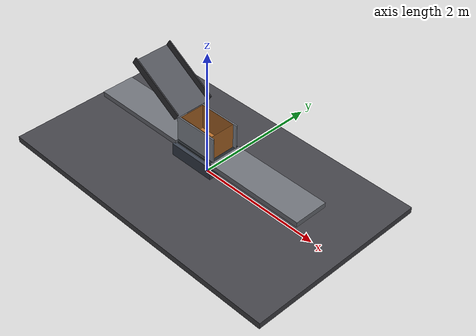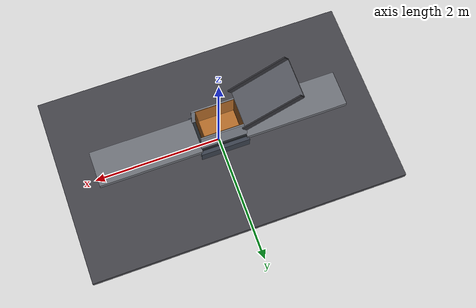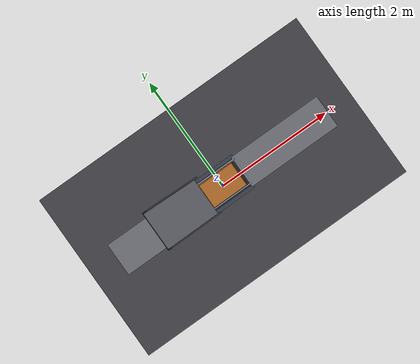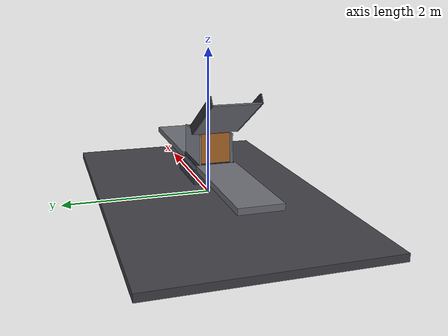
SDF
<?xml version="1.0"?>
<sdf version="1.10">
  <world name="kty_station_smoke">
    <gravity>0 0 -9.81</gravity>
    <physics name="kty_smoke_physics" type="ignored">
      <max_step_size>0.001</max_step_size>
      <real_time_factor>1.0</real_time_factor>
      <real_time_update_rate>1000</real_time_update_rate>
    </physics>

    <plugin filename="gz-sim-physics-system" name="gz::sim::systems::Physics"/>
    <plugin filename="gz-sim-user-commands-system" name="gz::sim::systems::UserCommands"/>
    <plugin filename="gz-sim-scene-broadcaster-system" name="gz::sim::systems::SceneBroadcaster"/>

    <scene>
      <ambient>0.48 0.48 0.48</ambient>
      <background>0.16 0.18 0.22</background>
      <grid>true</grid>
    </scene>

    <light type="directional" name="sun">
      <pose>-3 -4 8 0 0 0</pose>
      <cast_shadows>true</cast_shadows>
      <diffuse>0.95 0.95 0.95 1</diffuse>
      <specular>0.25 0.25 0.25 1</specular>
      <direction>0.3 0.4 -1.0</direction>
    </light>

    <model name="floor">
      <static>true</static>
      <pose>0 0 -0.05 0 0 0</pose>
      <link name="floor_link">
        <collision name="floor_collision">
          <geometry><box><size>5.0 3.0 0.10</size></box></geometry>
        </collision>
        <visual name="floor_visual">
          <geometry><box><size>5.0 3.0 0.10</size></box></geometry>
          <material>
            <ambient>0.18 0.18 0.18 1</ambient>
            <diffuse>0.26 0.26 0.28 1</diffuse>
          </material>
        </visual>
      </link>
    </model>

    <model name="kty_infeed_smoke">
      <static>true</static>
      <pose>-1.15 0 0.46 0 0 0</pose>
      <link name="bed">
        <collision name="bed_collision">
          <geometry><box><size>1.60 0.55 0.08</size></box></geometry>
        </collision>
        <visual name="bed_visual">
          <geometry><box><size>1.60 0.55 0.08</size></box></geometry>
          <material><ambient>0.30 0.31 0.33 1</ambient><diffuse>0.43 0.44 0.47 1</diffuse></material>
        </visual>
      </link>
    </model>

    <model name="kty_platform_smoke">
      <static>true</static>
      <link name="base">
        <pose>0 0 0.35 0 0 0</pose>
        <collision name="base_collision"><geometry><box><size>0.76 0.62 0.20</size></box></geometry></collision>
        <visual name="base_visual"><geometry><box><size>0.76 0.62 0.20</size></box></geometry><material><ambient>0.14 0.16 0.19 1</ambient><diffuse>0.22 0.25 0.30 1</diffuse></material></visual>
      </link>
      <link name="table">
        <pose>0 0 0.475 0 0 0</pose>
        <collision name="table_collision"><geometry><box><size>0.70 0.50 0.05</size></box></geometry></collision>
        <visual name="table_visual"><geometry><box><size>0.70 0.50 0.05</size></box></geometry><material><ambient>0.07 0.08 0.09 1</ambient><diffuse>0.12 0.14 0.16 1</diffuse></material></visual>
      </link>
    </model>

    <model name="kty_outfeed_smoke">
      <static>true</static>
      <pose>1.15 0 0.46 0 0 0</pose>
      <link name="bed">
        <collision name="bed_collision"><geometry><box><size>1.60 0.55 0.08</size></box></geometry></collision>
        <visual name="bed_visual"><geometry><box><size>1.60 0.55 0.08</size></box></geometry><material><ambient>0.30 0.31 0.33 1</ambient><diffuse>0.43 0.44 0.47 1</diffuse></material></visual>
      </link>
    </model>

    <model name="kty_side_guides_smoke">
      <static>true</static>
      <link name="guides">
        <collision name="guide_neg_y_collision"><pose>0 -0.218 0.70 0 0 0</pose><geometry><box><size>0.72 0.018 0.40</size></box></geometry></collision>
        <visual name="guide_neg_y_visual"><pose>0 -0.218 0.70 0 0 0</pose><geometry><box><size>0.72 0.018 0.40</size></box></geometry><material><ambient>0.40 0.42 0.45 1</ambient><diffuse>0.55 0.57 0.61 1</diffuse></material></visual>
        <collision name="guide_pos_y_collision"><pose>0 0.218 0.70 0 0 0</pose><geometry><box><size>0.72 0.018 0.40</size></box></geometry></collision>
        <visual name="guide_pos_y_visual"><pose>0 0.218 0.70 0 0 0</pose><geometry><box><size>0.72 0.018 0.40</size></box></geometry><material><ambient>0.40 0.42 0.45 1</ambient><diffuse>0.55 0.57 0.61 1</diffuse></material></visual>
      </link>
    </model>

    <model name="product_chute_smoke">
      <static>true</static>
      <pose>-0.730 0 1.185 0 0.5585053606 0</pose>
      <link name="chute">
        <collision name="bed_collision"><geometry><box><size>1.000 0.600 0.020</size></box></geometry></collision>
        <visual name="bed_visual"><geometry><box><size>1.000 0.600 0.020</size></box></geometry><material><ambient>0.22 0.23 0.25 1</ambient><diffuse>0.36 0.37 0.40 1</diffuse></material></visual>
        <collision name="rail_neg_y_collision"><pose>0 -0.310 0.055 0 0 0</pose><geometry><box><size>1.000 0.020 0.130</size></box></geometry></collision>
        <visual name="rail_neg_y_visual"><pose>0 -0.310 0.055 0 0 0</pose><geometry><box><size>1.000 0.020 0.130</size></box></geometry><material><ambient>0.12 0.12 0.13 1</ambient><diffuse>0.20 0.20 0.22 1</diffuse></material></visual>
        <collision name="rail_pos_y_collision"><pose>0 0.310 0.055 0 0 0</pose><geometry><box><size>1.000 0.020 0.130</size></box></geometry></collision>
        <visual name="rail_pos_y_visual"><pose>0 0.310 0.055 0 0 0</pose><geometry><box><size>1.000 0.020 0.130</size></box></geometry><material><ambient>0.12 0.12 0.13 1</ambient><diffuse>0.20 0.20 0.22 1</diffuse></material></visual>
      </link>
    </model>

    <!-- Static reference KTY. Its bottom surface is at z=0.500 m. -->
    <model name="kty_smoke_container">
      <static>true</static>
      <pose>0 0 0.500 0 0 0</pose>
      <link name="body">
        <collision name="bottom_collision"><pose>0 0 0.0015 0 0 0</pose><geometry><box><size>0.606 0.406 0.003</size></box></geometry></collision>
        <visual name="bottom_visual"><pose>0 0 0.0015 0 0 0</pose><geometry><box><size>0.606 0.406 0.003</size></box></geometry><material><ambient>0.63 0.36 0.12 1</ambient><diffuse>0.70 0.42 0.16 1</diffuse></material></visual>

        <collision name="wall_neg_x_collision"><pose>-0.3015 0 0.203 0 0 0</pose><geometry><box><size>0.003 0.406 0.400</size></box></geometry></collision>
        <visual name="wall_neg_x_visual"><pose>-0.3015 0 0.203 0 0 0</pose><geometry><box><size>0.003 0.406 0.400</size></box></geometry><material><ambient>0.63 0.36 0.12 1</ambient><diffuse>0.70 0.42 0.16 1</diffuse></material></visual>

        <collision name="wall_pos_x_collision"><pose>0.3015 0 0.203 0 0 0</pose><geometry><box><size>0.003 0.406 0.400</size></box></geometry></collision>
        <visual name="wall_pos_x_visual"><pose>0.3015 0 0.203 0 0 0</pose><geometry><box><size>0.003 0.406 0.400</size></box></geometry><material><ambient>0.63 0.36 0.12 1</ambient><diffuse>0.70 0.42 0.16 1</diffuse></material></visual>

        <collision name="wall_neg_y_collision"><pose>0 -0.2015 0.203 0 0 0</pose><geometry><box><size>0.600 0.003 0.400</size></box></geometry></collision>
        <visual name="wall_neg_y_visual"><pose>0 -0.2015 0.203 0 0 0</pose><geometry><box><size>0.600 0.003 0.400</size></box></geometry><material><ambient>0.63 0.36 0.12 1</ambient><diffuse>0.70 0.42 0.16 1</diffuse></material></visual>

        <collision name="wall_pos_y_collision"><pose>0 0.2015 0.203 0 0 0</pose><geometry><box><size>0.600 0.003 0.400</size></box></geometry></collision>
        <visual name="wall_pos_y_visual"><pose>0 0.2015 0.203 0 0 0</pose><geometry><box><size>0.600 0.003 0.400</size></box></geometry><material><ambient>0.63 0.36 0.12 1</ambient><diffuse>0.70 0.42 0.16 1</diffuse></material></visual>
      </link>
    </model>

    <gui fullscreen="0">
      <plugin filename="MinimalScene" name="3D View">
        <gz-gui>
          <title>3D View</title>
          <property type="bool" key="showTitleBar">false</property>
          <property type="string" key="state">docked</property>
        </gz-gui>
        <engine>ogre</engine>
        <scene>scene</scene>
        <ambient_light>0.48 0.48 0.48</ambient_light>
        <background_color>0.16 0.18 0.22</background_color>
        <camera_pose>-3.6 -3.0 2.8 0 0.42 0.72</camera_pose>
      </plugin>

      <plugin filename="EntityContextMenuPlugin" name="Entity context menu">
        <gz-gui><property key="state" type="string">floating</property><property key="showTitleBar" type="bool">false</property></gz-gui>
      </plugin>
      <plugin filename="GzSceneManager" name="Scene Manager">
        <gz-gui><property key="state" type="string">floating</property><property key="showTitleBar" type="bool">false</property></gz-gui>
      </plugin>
      <plugin filename="InteractiveViewControl" name="Interactive view control">
        <gz-gui><property key="state" type="string">floating</property><property key="showTitleBar" type="bool">false</property></gz-gui>
      </plugin>
      <plugin filename="CameraTracking" name="Camera Tracking">
        <gz-gui><property key="state" type="string">floating</property><property key="showTitleBar" type="bool">false</property></gz-gui>
      </plugin>
      <plugin name="World control" filename="WorldControl">
        <gz-gui><title>World control</title><property type="bool" key="showTitleBar">0</property><property type="string" key="state">floating</property></gz-gui>
        <play_pause>1</play_pause>
        <step>1</step>
        <start_paused>0</start_paused>
      </plugin>
      <plugin filename="WorldStats" name="World stats"/>
      <plugin filename="EntityTree" name="Entity tree"/>
    </gui>
  </world>
</sdf>
